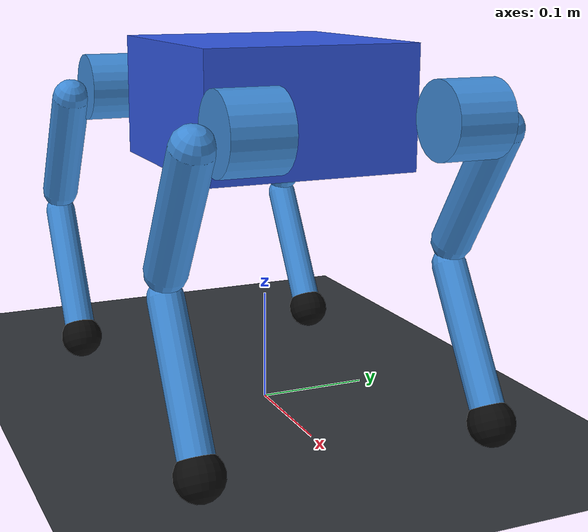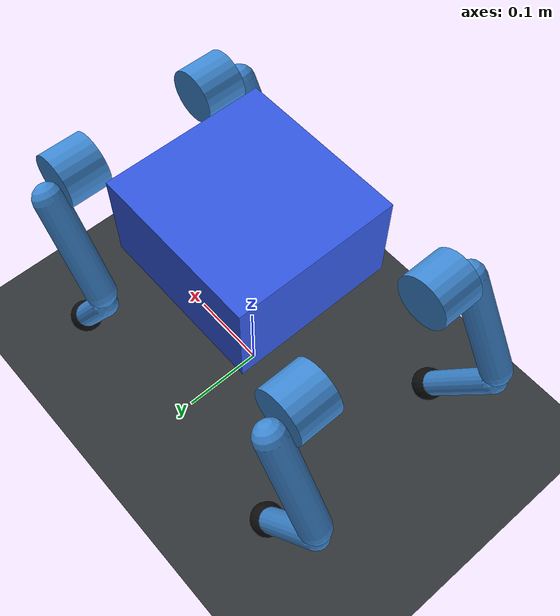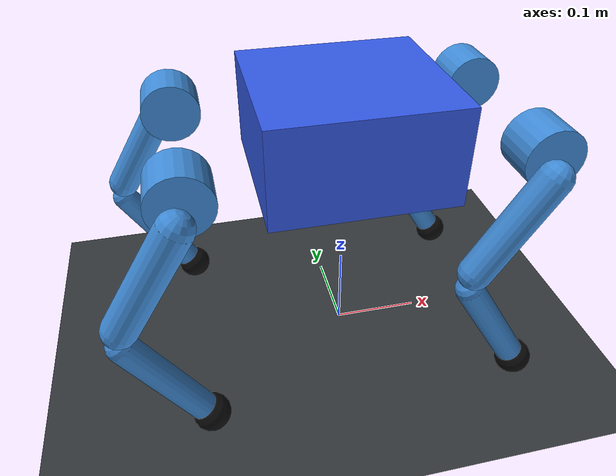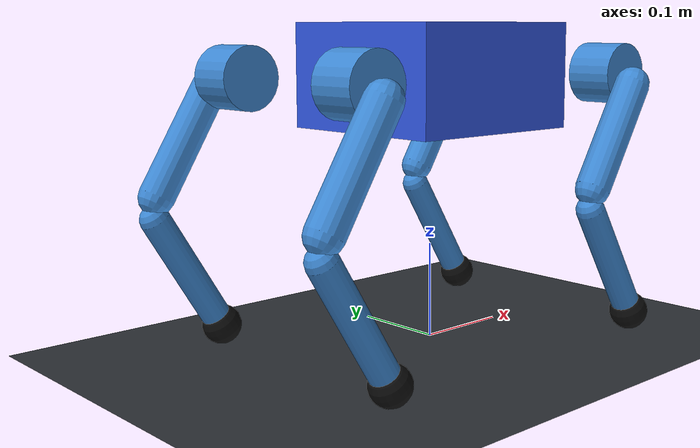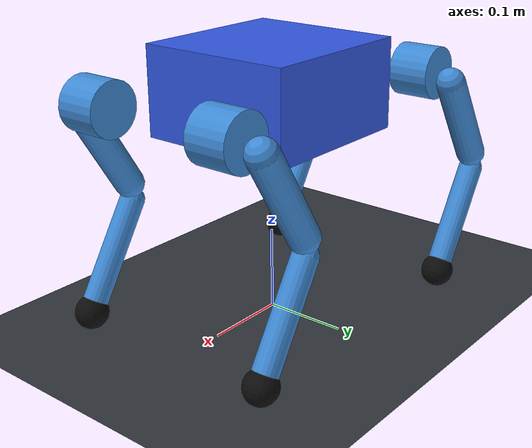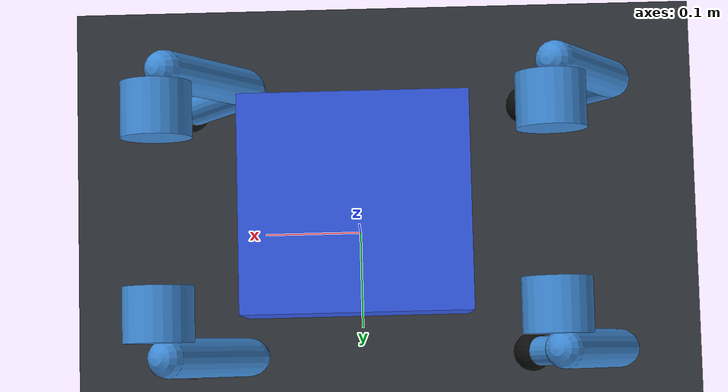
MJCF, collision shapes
<mujoco model="Navi quadruped scene">
  <compiler angle="radian" coordinate="local" meshdir="." autolimits="true"
            inertiafromgeom="false"/>
  <option timestep="0.001" gravity="0 0 -9.81" integrator="implicitfast"
          solver="Newton" iterations="60" tolerance="1e-10"
          cone="elliptic" impratio="5"/>
  <size njmax="1000" nconmax="200"/>
  <statistic center="0 0 0.16" extent="0.9"/>

  <visual>
    <headlight diffuse="0.55 0.55 0.55" ambient="0.25 0.25 0.25" specular="0.2 0.2 0.2"/>
    <rgba haze="0.12 0.15 0.19 1"/>
    <global azimuth="135" elevation="-22"/>
  </visual>

  <default>
    <default class="navi">
      <joint type="hinge" limited="true" damping="0.15" armature="0.002" frictionloss="0.015"/>
      <geom condim="4" friction="0.8 0.01 0.0005" solref="0.015 1" solimp="0.9 0.97 0.002"/>
      <site group="4"/>
      <default class="abad_joint">
        <joint damping="0.12" armature="0.002" frictionloss="0.015"/>
      </default>
      <default class="hip_joint">
        <joint damping="0.20" armature="0.003" frictionloss="0.02"/>
      </default>
      <default class="knee_joint">
        <joint damping="0.14" armature="0.002" frictionloss="0.015"/>
      </default>
      <default class="visual">
        <geom contype="0" conaffinity="0" group="1" density="0"/>
      </default>
      <default class="body_collision">
        <geom contype="2" conaffinity="1" group="3" rgba="0.2 0.35 0.9 0.16"
              friction="0.65 0.01 0.0005"/>
      </default>
      <default class="limb_collision">
        <geom contype="2" conaffinity="1" group="3" rgba="0.25 0.55 0.85 0.10"
              friction="0.75 0.01 0.0005"/>
      </default>
      <default class="foot_collision">
        <geom contype="2" conaffinity="1" group="3" rgba="0.05 0.05 0.05 0.55"
              condim="6" friction="1.15 0.025 0.002" solref="0.010 1" solimp="0.92 0.98 0.001"/>
      </default>
    </default>
  </default>

  <asset>
    <texture name="grid" type="2d" builtin="checker" width="512" height="512"
             rgb1="0.16 0.18 0.20" rgb2="0.27 0.29 0.31"/>
    <material name="ground_material" texture="grid" texrepeat="8 8" texuniform="true"
              reflectance="0.1" rgba="0.9 0.9 0.9 1"/>
    <material name="body_material" rgba="0.70 0.72 0.76 1"/>
    <material name="abad_material" rgba="0.80 0.72 0.18 1"/>
    <material name="limb_material" rgba="0.62 0.65 0.70 1"/>
    <material name="foot_material" rgba="0.08 0.08 0.09 1"/>
    <mesh name="base_link" file="meshes/base_link.STL"/>
    <mesh name="abad_link" file="meshes/abad_link.STL"/>
    <mesh name="abad_link_mirror_y" file="meshes/abad_link_mirror_y.STL"/>
    <mesh name="abad_link_mirror_x" file="meshes/abad_link_mirror_x.STL"/>
    <mesh name="abad_link_mirror_xy" file="meshes/abad_link_mirror_xy.STL"/>
    <mesh name="hip_link" file="meshes/hip_link.STL"/>
    <mesh name="hip_link_mirror_y" file="meshes/hip_link_mirror_y.STL"/>
    <mesh name="knee_link" file="meshes/knee_link.STL"/>
    <mesh name="knee_link_mirror_y" file="meshes/knee_link_mirror_y.STL"/>
    <mesh name="foot_link" file="meshes/foot_link.STL"/>
  </asset>

  <worldbody>
    <geom name="ground" type="plane" size="6 6 0.05" material="ground_material"
          contype="1" conaffinity="2" condim="6" friction="0.95 0.02 0.001"
          solref="0.015 1" solimp="0.9 0.98 0.001"/>
    <light name="key_light" pos="1.5 -2.5 3.5" dir="-0.2 0.4 -1" directional="true"/>
    <light name="fill_light" pos="-2 1.5 2.5" dir="0.4 -0.2 -1" directional="true"
           diffuse="0.35 0.42 0.5"/>
    <camera name="track" mode="trackcom" pos="0.9 -1.2 0.65" xyaxes="0.8 0.6 0 -0.22 0.29 0.93"/>
    <camera name="side" pos="0 -1.5 0.4" xyaxes="1 0 0 0 0.25 0.97"/>
    <camera name="front" pos="1.2 0 0.4" xyaxes="0 1 0 -0.25 0 0.97"/>
    <include file="robot.xml"/>
  </worldbody>

  <actuator>
    <motor name="front_left_abad_joint_motor" joint="front_left_abad_joint" ctrllimited="true" ctrlrange="-9.1 9.1" gear="1"/>
    <motor name="front_left_hip_joint_motor" joint="front_left_hip_joint" ctrllimited="true" ctrlrange="-9.1 9.1" gear="1"/>
    <motor name="front_left_knee_joint_motor" joint="front_left_knee_joint" ctrllimited="true" ctrlrange="-9.1 9.1" gear="1"/>
    <motor name="front_right_abad_joint_motor" joint="front_right_abad_joint" ctrllimited="true" ctrlrange="-9.1 9.1" gear="1"/>
    <motor name="front_right_hip_joint_motor" joint="front_right_hip_joint" ctrllimited="true" ctrlrange="-9.1 9.1" gear="1"/>
    <motor name="front_right_knee_joint_motor" joint="front_right_knee_joint" ctrllimited="true" ctrlrange="-9.1 9.1" gear="1"/>
    <motor name="hind_left_abad_joint_motor" joint="hind_left_abad_joint" ctrllimited="true" ctrlrange="-9.1 9.1" gear="1"/>
    <motor name="hind_left_hip_joint_motor" joint="hind_left_hip_joint" ctrllimited="true" ctrlrange="-9.1 9.1" gear="1"/>
    <motor name="hind_left_knee_joint_motor" joint="hind_left_knee_joint" ctrllimited="true" ctrlrange="-9.1 9.1" gear="1"/>
    <motor name="hind_right_abad_joint_motor" joint="hind_right_abad_joint" ctrllimited="true" ctrlrange="-9.1 9.1" gear="1"/>
    <motor name="hind_right_hip_joint_motor" joint="hind_right_hip_joint" ctrllimited="true" ctrlrange="-9.1 9.1" gear="1"/>
    <motor name="hind_right_knee_joint_motor" joint="hind_right_knee_joint" ctrllimited="true" ctrlrange="-9.1 9.1" gear="1"/>
  </actuator>

  <sensor>
    <framepos name="base_position" objtype="body" objname="body"/>
    <framequat name="base_orientation" objtype="body" objname="body"/>
    <framelinvel name="base_linear_velocity" objtype="body" objname="body"/>
    <frameangvel name="base_angular_velocity" objtype="body" objname="body"/>
    <accelerometer name="imu_accelerometer" site="imu_site"/>
    <gyro name="imu_gyro" site="imu_site"/>
    <jointpos name="front_left_abad_joint_position" joint="front_left_abad_joint"/>
    <jointvel name="front_left_abad_joint_velocity" joint="front_left_abad_joint"/>
    <jointpos name="front_left_hip_joint_position" joint="front_left_hip_joint"/>
    <jointvel name="front_left_hip_joint_velocity" joint="front_left_hip_joint"/>
    <jointpos name="front_left_knee_joint_position" joint="front_left_knee_joint"/>
    <jointvel name="front_left_knee_joint_velocity" joint="front_left_knee_joint"/>
    <jointpos name="front_right_abad_joint_position" joint="front_right_abad_joint"/>
    <jointvel name="front_right_abad_joint_velocity" joint="front_right_abad_joint"/>
    <jointpos name="front_right_hip_joint_position" joint="front_right_hip_joint"/>
    <jointvel name="front_right_hip_joint_velocity" joint="front_right_hip_joint"/>
    <jointpos name="front_right_knee_joint_position" joint="front_right_knee_joint"/>
    <jointvel name="front_right_knee_joint_velocity" joint="front_right_knee_joint"/>
    <jointpos name="hind_left_abad_joint_position" joint="hind_left_abad_joint"/>
    <jointvel name="hind_left_abad_joint_velocity" joint="hind_left_abad_joint"/>
    <jointpos name="hind_left_hip_joint_position" joint="hind_left_hip_joint"/>
    <jointvel name="hind_left_hip_joint_velocity" joint="hind_left_hip_joint"/>
    <jointpos name="hind_left_knee_joint_position" joint="hind_left_knee_joint"/>
    <jointvel name="hind_left_knee_joint_velocity" joint="hind_left_knee_joint"/>
    <jointpos name="hind_right_abad_joint_position" joint="hind_right_abad_joint"/>
    <jointvel name="hind_right_abad_joint_velocity" joint="hind_right_abad_joint"/>
    <jointpos name="hind_right_hip_joint_position" joint="hind_right_hip_joint"/>
    <jointvel name="hind_right_hip_joint_velocity" joint="hind_right_hip_joint"/>
    <jointpos name="hind_right_knee_joint_position" joint="hind_right_knee_joint"/>
    <jointvel name="hind_right_knee_joint_velocity" joint="hind_right_knee_joint"/>
    <actuatorfrc name="front_left_abad_joint_force" actuator="front_left_abad_joint_motor"/>
    <actuatorfrc name="front_left_hip_joint_force" actuator="front_left_hip_joint_motor"/>
    <actuatorfrc name="front_left_knee_joint_force" actuator="front_left_knee_joint_motor"/>
    <actuatorfrc name="front_right_abad_joint_force" actuator="front_right_abad_joint_motor"/>
    <actuatorfrc name="front_right_hip_joint_force" actuator="front_right_hip_joint_motor"/>
    <actuatorfrc name="front_right_knee_joint_force" actuator="front_right_knee_joint_motor"/>
    <actuatorfrc name="hind_left_abad_joint_force" actuator="hind_left_abad_joint_motor"/>
    <actuatorfrc name="hind_left_hip_joint_force" actuator="hind_left_hip_joint_motor"/>
    <actuatorfrc name="hind_left_knee_joint_force" actuator="hind_left_knee_joint_motor"/>
    <actuatorfrc name="hind_right_abad_joint_force" actuator="hind_right_abad_joint_motor"/>
    <actuatorfrc name="hind_right_hip_joint_force" actuator="hind_right_hip_joint_motor"/>
    <actuatorfrc name="hind_right_knee_joint_force" actuator="hind_right_knee_joint_motor"/>
  </sensor>

  <keyframe>
    <key name="standing" qpos="0 0 0.276256 1 0 0 0 0 -0.55 1.10 0 -0.55 1.10 0 -0.55 1.10 0 -0.55 1.10"/>
    <key name="crouched" qpos="0 0 0.240007 1 0 0 0 0 -0.75 1.50 0 -0.75 1.50 0 -0.75 1.50 0 -0.75 1.50"/>
    <key name="test" qpos="0 0 0.268101 1 0 0 0 0 -0.60 1.20 0 -0.60 1.20 0 -0.60 1.20 0 -0.60 1.20"/>
  </keyframe>
</mujoco>

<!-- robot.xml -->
<mujocoinclude>
  <!-- Native Navi body tree. STL is visual-only; primitive geoms handle contact. -->
  <body name="body" pos="0 0 0.276256" childclass="navi">
    <freejoint name="root"/>
    <inertial pos="-0.00091406 -0.001375573 -0.001298396475" mass="2.571164339"
              fullinertia="0.0063721225 0.0191754101 0.0234706047 -0.0000632938 -0.0000089136 0.0000201465"/>
    <geom name="body_visual" class="visual" type="mesh" mesh="base_link" material="body_material"/>
    <geom name="body_collision" class="body_collision" type="box" size="0.10 0.095 0.0538"/>
    <site name="imu_site" pos="0 0 0" size="0.006" rgba="1 0.2 0.1 1"/>

    <body name="front_left_abad_link" pos="0.176 0.0525 0">
      <joint name="front_left_abad_joint" class="abad_joint" axis="1 0 0" range="-1.134 1.134"/>
      <inertial pos="-0.003189715443 -0.007298788247 0.000193611084" mass="0.447529613"
                fullinertia="0.0003159129992 0.0003689957957 0.0003318882955 0.0000013074 0.0000012672 -0.0000029769"/>
      <geom name="front_left_abad_visual" class="visual" type="mesh" mesh="abad_link" material="abad_material"/>
      <geom name="front_left_abad_collision" class="limb_collision" type="cylinder" fromto="0 0.0135 0 0 0.0635 0" size="0.032"/>
      <body name="front_left_hip_link" pos="0 0.077 0" quat="0.962425198 0 0.271546937 0">
        <joint name="front_left_hip_joint" class="hip_joint" axis="0 -1 0" ref="-0.55" range="-3.141 2.792"/>
        <!-- Invalid URDF hip inertia replaced by a positive box-equivalent
             inertia derived from the hip STL bounds: simulation approximation. -->
        <inertial pos="-0.002445772827 -0.018551827211 -0.022348070913" mass="0.526649872"
                  diaginertia="0.001954009163 0.002178598212 0.000345729243"/>
        <geom name="front_left_hip_visual" class="visual" type="mesh" mesh="hip_link" material="limb_material"/>
        <geom name="front_left_hip_collision" class="limb_collision" type="capsule" fromto="0 0 -0.012 0 0 -0.135" size="0.018"/>
        <body name="front_left_knee_link" pos="0 0 -0.15" quat="0.852524522 0 -0.522687229 0">
          <joint name="front_left_knee_joint" class="knee_joint" axis="0 -1 0" ref="1.10" range="0.436 2.705"/>
          <inertial pos="-0.00502217315 0.000001089006 -0.085942040257" mass="0.078504403"
                    fullinertia="0.0003336986119 0.0003405454045 0.0000176299000 -0.000000001844 0.0000225373988 -0.000000004385"/>
          <geom name="front_left_knee_visual" class="visual" type="mesh" mesh="knee_link" material="limb_material"/>
          <geom name="front_left_knee_collision" class="limb_collision" type="capsule" fromto="0 0 -0.010 0 0 -0.140" size="0.015"/>
          <body name="front_left_foot" pos="0 0 -0.15">
            <inertial pos="0 0 0" mass="0.001" diaginertia="0.0000001681 0.0000001681 0.0000001681"/>
            <geom name="front_left_foot_visual" class="visual" type="mesh" mesh="foot_link" material="foot_material"/>
            <geom name="front_left_foot_contact" class="foot_collision" type="sphere" size="0.0205"/>
            <site name="front_left_foot_site" size="0.004" rgba="0.2 1 0.2 1"/>
          </body>
        </body>
      </body>
    </body>

    <body name="front_right_abad_link" pos="0.176 -0.0525 0">
      <joint name="front_right_abad_joint" class="abad_joint" axis="1 0 0" range="-1.134 1.134"/>
      <inertial pos="-0.003189715443 0.007298788247 0.000193611084" mass="0.447529613"
                fullinertia="0.0003159129992 0.0003689957957 0.0003318882955 -0.0000013074 0.0000012672 0.0000029769"/>
      <geom name="front_right_abad_visual" class="visual" type="mesh" mesh="abad_link_mirror_y" material="abad_material"/>
      <geom name="front_right_abad_collision" class="limb_collision" type="cylinder" fromto="0 -0.0135 0 0 -0.0635 0" size="0.032"/>
      <body name="front_right_hip_link" pos="0 -0.077 0" quat="0.962425198 0 0.271546937 0">
        <joint name="front_right_hip_joint" class="hip_joint" axis="0 -1 0" ref="-0.55" range="-3.141 2.792"/>
        <inertial pos="-0.002445772827 0.018551827211 -0.022348070913" mass="0.526649872"
                  diaginertia="0.001954009163 0.002178598212 0.000345729243"/>
        <geom name="front_right_hip_visual" class="visual" type="mesh" mesh="hip_link_mirror_y" material="limb_material"/>
        <geom name="front_right_hip_collision" class="limb_collision" type="capsule" fromto="0 0 -0.012 0 0 -0.135" size="0.018"/>
        <body name="front_right_knee_link" pos="0 0 -0.15" quat="0.852524522 0 -0.522687229 0">
          <joint name="front_right_knee_joint" class="knee_joint" axis="0 -1 0" ref="1.10" range="0.436 2.705"/>
          <inertial pos="-0.00502217315 -0.000001089006 -0.085942040257" mass="0.078504403"
                    fullinertia="0.0003336986119 0.0003405454045 0.0000176299000 0.000000001844 0.0000225373988 0.000000004385"/>
          <geom name="front_right_knee_visual" class="visual" type="mesh" mesh="knee_link_mirror_y" material="limb_material"/>
          <geom name="front_right_knee_collision" class="limb_collision" type="capsule" fromto="0 0 -0.010 0 0 -0.140" size="0.015"/>
          <body name="front_right_foot" pos="0 0 -0.15">
            <inertial pos="0 0 0" mass="0.001" diaginertia="0.0000001681 0.0000001681 0.0000001681"/>
            <geom name="front_right_foot_visual" class="visual" type="mesh" mesh="foot_link" material="foot_material"/>
            <geom name="front_right_foot_contact" class="foot_collision" type="sphere" size="0.0205"/>
            <site name="front_right_foot_site" size="0.004" rgba="0.2 1 0.2 1"/>
          </body>
        </body>
      </body>
    </body>

    <body name="hind_left_abad_link" pos="-0.176 0.0525 0">
      <joint name="hind_left_abad_joint" class="abad_joint" axis="1 0 0" range="-1.134 1.134"/>
      <inertial pos="0.003189715443 -0.007298788247 0.000193611084" mass="0.447529613"
                fullinertia="0.0003159129992 0.0003689957957 0.0003318882955 -0.0000013074 -0.0000012672 -0.0000029769"/>
      <geom name="hind_left_abad_visual" class="visual" type="mesh" mesh="abad_link_mirror_x" material="abad_material"/>
      <geom name="hind_left_abad_collision" class="limb_collision" type="cylinder" fromto="0 0.0135 0 0 0.0635 0" size="0.032"/>
      <body name="hind_left_hip_link" pos="0 0.077 0" quat="0.962425198 0 0.271546937 0">
        <joint name="hind_left_hip_joint" class="hip_joint" axis="0 -1 0" ref="-0.55" range="-3.141 2.792"/>
        <inertial pos="-0.002445772827 -0.018551827211 -0.022348070913" mass="0.526649872"
                  diaginertia="0.001954009163 0.002178598212 0.000345729243"/>
        <geom name="hind_left_hip_visual" class="visual" type="mesh" mesh="hip_link" material="limb_material"/>
        <geom name="hind_left_hip_collision" class="limb_collision" type="capsule" fromto="0 0 -0.012 0 0 -0.135" size="0.018"/>
        <body name="hind_left_knee_link" pos="0 0 -0.15" quat="0.852524522 0 -0.522687229 0">
          <joint name="hind_left_knee_joint" class="knee_joint" axis="0 -1 0" ref="1.10" range="0.436 2.705"/>
          <inertial pos="-0.00502217315 0.000001089006 -0.085942040257" mass="0.078504403"
                    fullinertia="0.0003336986119 0.0003405454045 0.0000176299000 -0.000000001844 0.0000225373988 -0.000000004385"/>
          <geom name="hind_left_knee_visual" class="visual" type="mesh" mesh="knee_link" material="limb_material"/>
          <geom name="hind_left_knee_collision" class="limb_collision" type="capsule" fromto="0 0 -0.010 0 0 -0.140" size="0.015"/>
          <body name="hind_left_foot" pos="0 0 -0.15">
            <inertial pos="0 0 0" mass="0.001" diaginertia="0.0000001681 0.0000001681 0.0000001681"/>
            <geom name="hind_left_foot_visual" class="visual" type="mesh" mesh="foot_link" material="foot_material"/>
            <geom name="hind_left_foot_contact" class="foot_collision" type="sphere" size="0.0205"/>
            <site name="hind_left_foot_site" size="0.004" rgba="0.2 1 0.2 1"/>
          </body>
        </body>
      </body>
    </body>

    <body name="hind_right_abad_link" pos="-0.176 -0.0525 0">
      <joint name="hind_right_abad_joint" class="abad_joint" axis="1 0 0" range="-1.134 1.134"/>
      <inertial pos="0.003189715443 0.007298788247 0.000193611084" mass="0.447529613"
                fullinertia="0.0003159129992 0.0003689957957 0.0003318882955 0.0000013074 -0.0000012672 0.0000029769"/>
      <geom name="hind_right_abad_visual" class="visual" type="mesh" mesh="abad_link_mirror_xy" material="abad_material"/>
      <geom name="hind_right_abad_collision" class="limb_collision" type="cylinder" fromto="0 -0.0135 0 0 -0.0635 0" size="0.032"/>
      <body name="hind_right_hip_link" pos="0 -0.077 0" quat="0.962425198 0 0.271546937 0">
        <joint name="hind_right_hip_joint" class="hip_joint" axis="0 -1 0" ref="-0.55" range="-3.141 2.792"/>
        <inertial pos="-0.002445772827 0.018551827211 -0.022348070913" mass="0.526649872"
                  diaginertia="0.001954009163 0.002178598212 0.000345729243"/>
        <geom name="hind_right_hip_visual" class="visual" type="mesh" mesh="hip_link_mirror_y" material="limb_material"/>
        <geom name="hind_right_hip_collision" class="limb_collision" type="capsule" fromto="0 0 -0.012 0 0 -0.135" size="0.018"/>
        <body name="hind_right_knee_link" pos="0 0 -0.15" quat="0.852524522 0 -0.522687229 0">
          <joint name="hind_right_knee_joint" class="knee_joint" axis="0 -1 0" ref="1.10" range="0.436 2.705"/>
          <inertial pos="-0.00502217315 -0.000001089006 -0.085942040257" mass="0.078504403"
                    fullinertia="0.0003336986119 0.0003405454045 0.0000176299000 0.000000001844 0.0000225373988 0.000000004385"/>
          <geom name="hind_right_knee_visual" class="visual" type="mesh" mesh="knee_link_mirror_y" material="limb_material"/>
          <geom name="hind_right_knee_collision" class="limb_collision" type="capsule" fromto="0 0 -0.010 0 0 -0.140" size="0.015"/>
          <body name="hind_right_foot" pos="0 0 -0.15">
            <inertial pos="0 0 0" mass="0.001" diaginertia="0.0000001681 0.0000001681 0.0000001681"/>
            <geom name="hind_right_foot_visual" class="visual" type="mesh" mesh="foot_link" material="foot_material"/>
            <geom name="hind_right_foot_contact" class="foot_collision" type="sphere" size="0.0205"/>
            <site name="hind_right_foot_site" size="0.004" rgba="0.2 1 0.2 1"/>
          </body>
        </body>
      </body>
    </body>
  </body>
</mujocoinclude>
